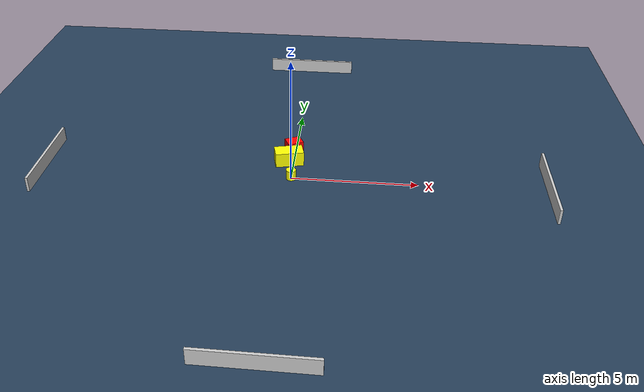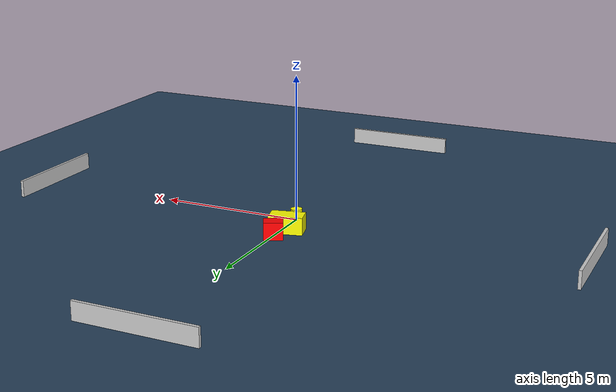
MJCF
<?xml version="1.0" ?>
<mujoco model="generated_environment">
  <option timestep="0.01" integrator="RK4" cone="elliptic"/>
  <default>
    <geom density="1"/>
  </default>
  <asset>
    <texture builtin="gradient" height="3072" name="skybox" rgb1="0.3 0.5 0.7" rgb2="0 0 0" type="skybox" width="512"/>
    <texture builtin="checker" height="300" name="groundplane" rgb1="0.2 0.3 0.4" rgb2="0.1 0.2 0.3" type="2d" width="300"/>
    <material name="groundplane" reflectance="0.2" texrepeat="5 5" texture="groundplane"/>
  </asset>
  <worldbody>
    <light dir="0 0 -1" directional="true" pos="0 0 1.5"/>
    <geom condim="3" friction="0.5 0.005 0.001" material="groundplane" name="floor" pos="0 0 0" size="0 0 0.05" type="plane"/>
    <body name="walls">
      <geom name="wall_1" condim="4" pos="-10.0 0.0 0.3" rgba="0.800000011920929 0.800000011920929 0.800000011920929 1.0" size="0.05 2.0 0.3" type="box"/>
      <geom name="wall_2" condim="4" pos="10.0 0.0 0.3" rgba="0.800000011920929 0.800000011920929 0.800000011920929 1.0" size="0.05 2.0 0.3" type="box"/>
      <geom name="wall_3" condim="4" pos="0.0 -10.0 0.3" rgba="0.800000011920929 0.800000011920929 0.800000011920929 1.0" size="2.0 0.05 0.3" type="box"/>
      <geom name="wall_4" condim="4" pos="0.0 10.0 0.3" rgba="0.800000011920929 0.800000011920929 0.800000011920929 1.0" size="2.0 0.05 0.3" type="box"/>
    </body>
    <body name="robot">
      <joint name="joint_x" type="slide" pos="0 0 0" axis="1 0 0"/>
      <joint name="joint_y" type="slide" pos="0 0 0" axis="0 1 0"/>
      <geom name="robot" type="cylinder" pos="0.0 0.0 0.2" size="0.2 0.2 0.0" mass="5.0" friction="1.0 0.005 0.0001" condim="4" rgba="1.0 1.0 0.0 1.0"/>
    </body>
    <body name="obstacle_1_movable">
      <geom name="obstacle_1_movable" condim="4" pos="-0.21316418392969932 1.1787160435792585 0.3" euler="0 0 103.66800173500508" friction="0.0 0.005 0.001" rgba="1.0 1.0 0.0 1.0" size="0.3203572428288261 0.5732587731278844 0.3" type="box" mass="0.1"/>
      <joint type="free"/>
    </body>
    <body name="obstacle_2_static">
      <geom name="obstacle_2_static" condim="4" pos="-0.07657899059978568 1.9396189848548584 0.3" euler="0 0 26.02466968683801" friction="0.0 0.005 0.001" rgba="1.0 0.0 0.0 1.0" size="0.32279131707920206 0.26296183692215847 0.3" type="box"/>
    </body>
  </worldbody>
  <actuator>
    <motor name="actuator_x" joint="joint_x" gear="1" ctrlrange="-1 1"/>
    <motor name="actuator_y" joint="joint_y" gear="1" ctrlrange="-1 1"/>
  </actuator>
</mujoco>
